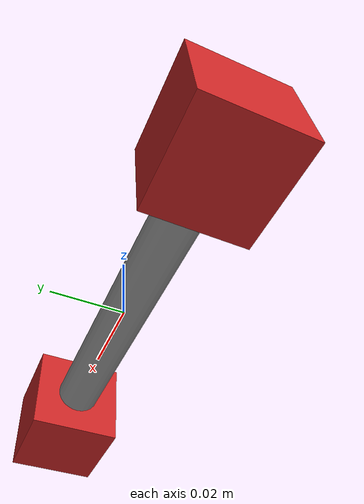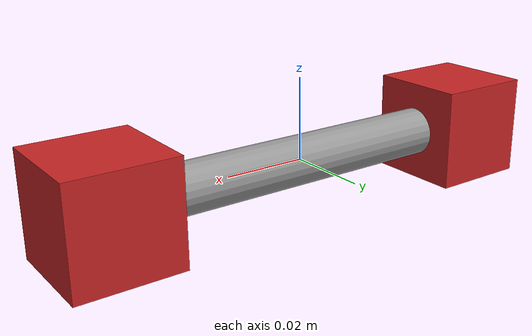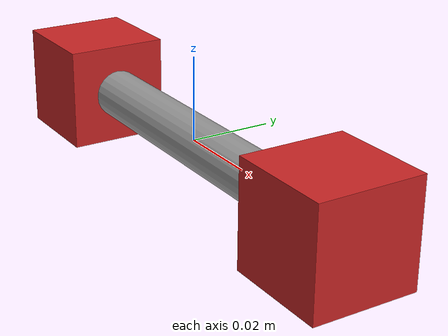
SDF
<?xml version='1.0'?>
<sdf version='1.6'>
  <model name='dumbbell'>
    <link name='link'>
      <inertial>
        <mass>0.15</mass>
        <inertia>
          <ixx>0.0001</ixx> <ixy>0</ixy> <ixz>0</ixz>
          <iyy>0.0005</iyy> <iyz>0</iyz>
          <izz>0.0005</izz>
        </inertia>
      </inertial>

      <visual name='left_vis'>
        <pose>-0.05 0 0 0 0 0</pose>
        <geometry><box><size>0.025 0.025 0.025</size></box></geometry>
        <material><script><name>Gazebo/Red</name></script></material>
      </visual>
      <collision name='left_col'>
        <pose>-0.05 0 0 0 0 0</pose>
        <geometry><box><size>0.025 0.025 0.025</size></box></geometry>
        <surface><friction><ode><mu>100.0</mu><mu2>100.0</mu2></ode></friction></surface>
      </collision>

      <visual name='right_vis'>
        <pose>0.05 0 0 0 0 0</pose>
        <geometry><box><size>0.025 0.025 0.025</size></box></geometry>
        <material><script><name>Gazebo/Red</name></script></material>
      </visual>
      <collision name='right_col'>
        <pose>0.05 0 0 0 0 0</pose>
        <geometry><box><size>0.025 0.025 0.025</size></box></geometry>
        <surface><friction><ode><mu>100.0</mu><mu2>100.0</mu2></ode></friction></surface>
      </collision>

      <visual name='handle_vis'>
        <pose>0 0 0 0 1.5707 0</pose> <geometry><cylinder><radius>0.006</radius><length>0.10</length></cylinder></geometry>
        <material><script><name>Gazebo/Grey</name></script></material>
      </visual>
      <collision name='handle_col'>
        <pose>0 0 0 0 1.5707 0</pose>
        <geometry><cylinder><radius>0.006</radius><length>0.10</length></cylinder></geometry>
        <surface><friction><ode><mu>100.0</mu><mu2>100.0</mu2></ode></friction></surface>
      </collision>
    </link>
  </model>
</sdf>
